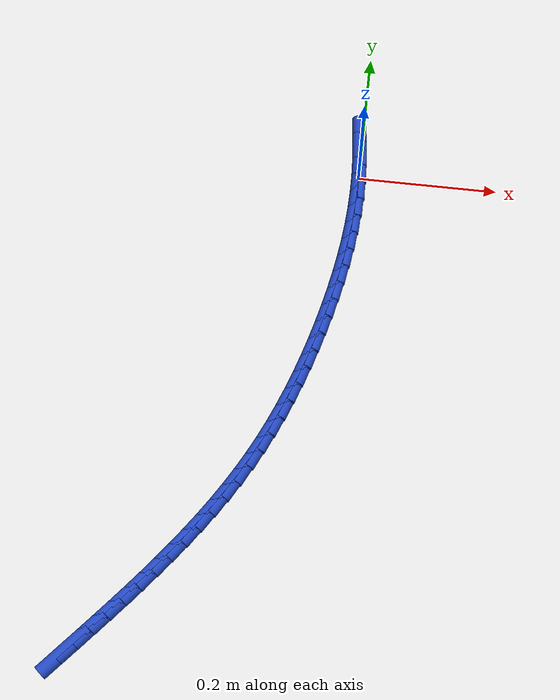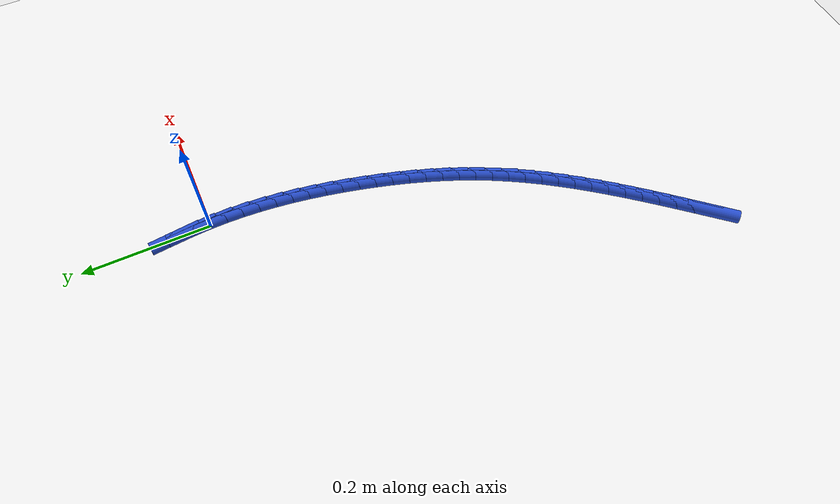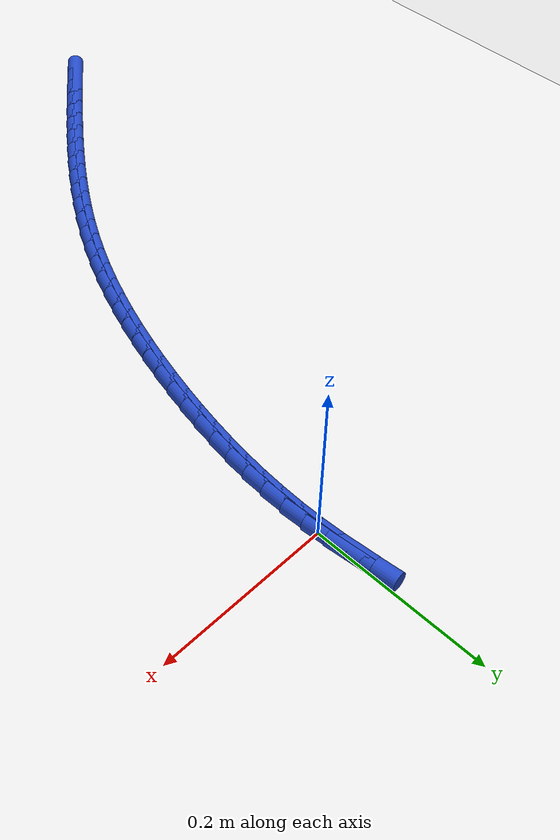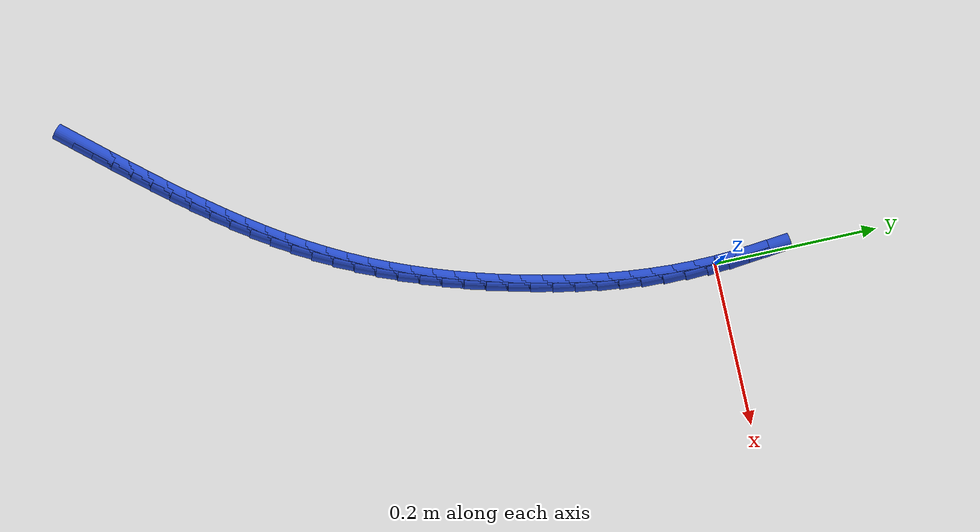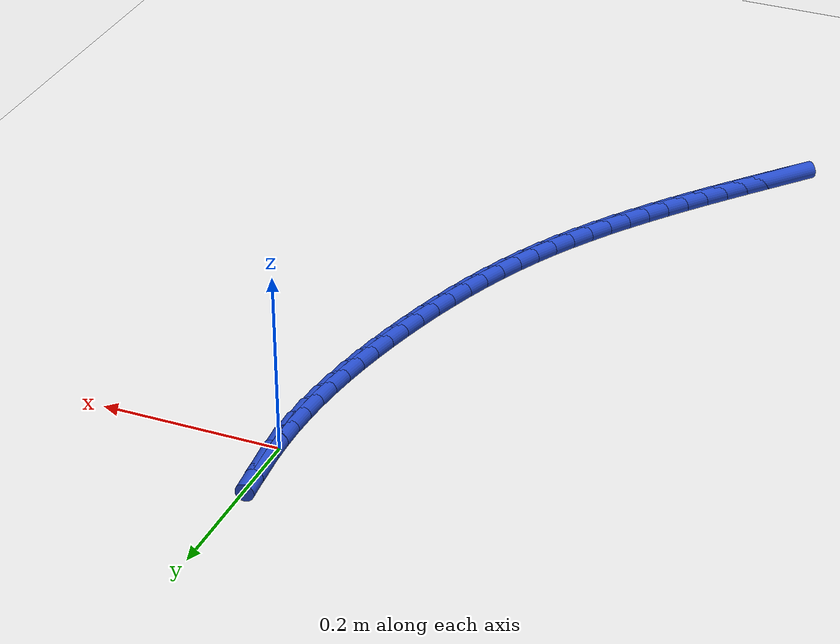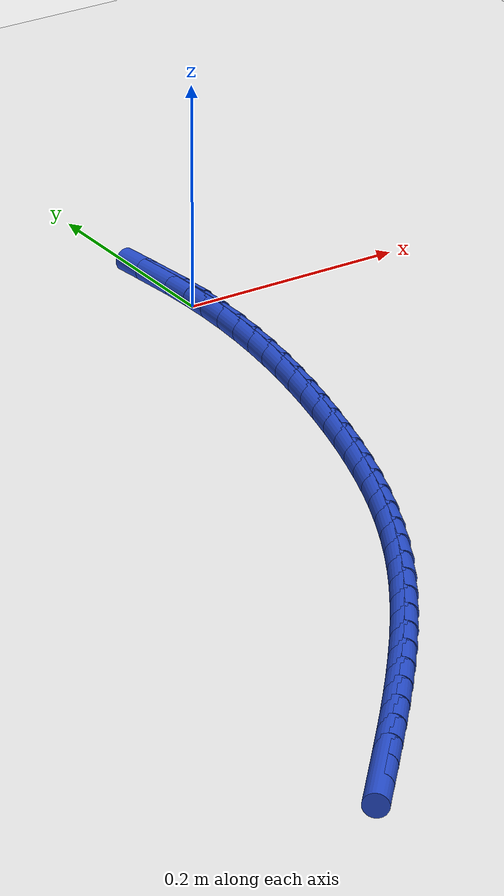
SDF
<sdf version="1.6">
 <world name="default">
  <model name="ground_plane">
   <static>1</static>
   <link name="link">
    <collision name="collision">
     <geometry><plane><normal>0 0 1</normal><size>100 100</size></plane></geometry>
     <surface><friction><ode><mu>100</mu><mu2>50</mu2></ode></friction></surface>
    </collision>
    <visual name="visual">
     <cast_shadows>0</cast_shadows>
     <geometry><plane><normal>0 0 1</normal><size>100 100</size></plane></geometry>
     <material>
      <script><uri>file://media/materials/scripts/gazebo.material</uri><name>Gazebo/WhiteGlow</name></script>
     </material>
    </visual>
   </link>
  </model>
  <model name="line">
   <link name="link_0">
    <pose>6.071532165918825e-18 -4.85722573273506e-17 0.01 0 1.57 -1.5202687227389018</pose>
    <collision name="collision">
     <geometry><cylinder><radius>0.01</radius><length>0.08</length></cylinder></geometry>
    </collision>
    <visual name="visual">
     <material>
      <script><name>Gazebo/Blue</name><uri>file://media/materials/scripts/gazebo.material</uri></script>
     </material>
     <geometry><cylinder><radius>0.01</radius><length>0.08</length></cylinder></geometry>
    </visual>
   </link>
   <link name="link_1">
    <pose>-0.0013621839984114712 0.026936257720885662 0.01 0 1.57 -1.4878777876628857</pose>
    <collision name="collision">
     <geometry><cylinder><radius>0.01</radius><length>0.08</length></cylinder></geometry>
    </collision>
    <visual name="visual">
     <material>
      <script><name>Gazebo/Blue</name><uri>file://media/materials/scripts/gazebo.material</uri></script>
     </material>
     <geometry><cylinder><radius>0.01</radius><length>0.08</length></cylinder></geometry>
    </visual>
   </link>
   <link name="link_2">
    <pose>-0.003603920495850203 0.05390967632911264 0.01 0 1.57 -1.4630148190310512</pose>
    <collision name="collision">
     <geometry><cylinder><radius>0.01</radius><length>0.08</length></cylinder></geometry>
    </collision>
    <visual name="visual">
     <material>
      <script><name>Gazebo/Blue</name><uri>file://media/materials/scripts/gazebo.material</uri></script>
     </material>
     <geometry><cylinder><radius>0.01</radius><length>0.08</length></cylinder></geometry>
    </visual>
   </link>
   <link name="link_250">
    <pose>-0.3042498673191543 -0.7167535047872194 0.01 0 1.57 0.860402977944339</pose>
    <collision name="collision">
     <geometry><cylinder><radius>0.01</radius><length>0.08</length></cylinder></geometry>
    </collision>
    <visual name="visual">
     <material>
      <script><name>Gazebo/Blue</name><uri>file://media/materials/scripts/gazebo.material</uri></script>
     </material>
     <geometry><cylinder><radius>0.01</radius><length>0.08</length></cylinder></geometry>
    </visual>
   </link>
   <link name="link_251">
    <pose>-0.286663952870351 -0.6963098268053097 0.01 0 1.57 0.8642690791997342</pose>
    <collision name="collision">
     <geometry><cylinder><radius>0.01</radius><length>0.08</length></cylinder></geometry>
    </collision>
    <visual name="visual">
     <material>
      <script><name>Gazebo/Blue</name><uri>file://media/materials/scripts/gazebo.material</uri></script>
     </material>
     <geometry><cylinder><radius>0.01</radius><length>0.08</length></cylinder></geometry>
    </visual>
   </link>
   <link name="link_252">
    <pose>-0.2691932083793415 -0.6758404933450893 0.01 0 1.57 0.8707164874178396</pose>
    <collision name="collision">
     <geometry><cylinder><radius>0.01</radius><length>0.08</length></cylinder></geometry>
    </collision>
    <visual name="visual">
     <material>
      <script><name>Gazebo/Blue</name><uri>file://media/materials/scripts/gazebo.material</uri></script>
     </material>
     <geometry><cylinder><radius>0.01</radius><length>0.08</length></cylinder></geometry>
    </visual>
   </link>
   <link name="link_253">
    <pose>-0.25189526057041733 -0.655306973498366 0.01 0 1.57 0.8797683877367338</pose>
    <collision name="collision">
     <geometry><cylinder><radius>0.01</radius><length>0.08</length></cylinder></geometry>
    </collision>
    <visual name="visual">
     <material>
      <script><name>Gazebo/Blue</name><uri>file://media/materials/scripts/gazebo.material</uri></script>
     </material>
     <geometry><cylinder><radius>0.01</radius><length>0.08</length></cylinder></geometry>
    </visual>
   </link>
   <link name="link_254">
    <pose>-0.23482773616786845 -0.634670736356946 0.01 0 1.57 0.8914507067793375</pose>
    <collision name="collision">
     <geometry><cylinder><radius>0.01</radius><length>0.08</length></cylinder></geometry>
    </collision>
    <visual name="visual">
     <material>
      <script><name>Gazebo/Blue</name><uri>file://media/materials/scripts/gazebo.material</uri></script>
     </material>
     <geometry><cylinder><radius>0.01</radius><length>0.08</length></cylinder></geometry>
    </visual>
   </link>
   <link name="link_255">
    <pose>-0.21804826189598525 -0.6138932510126356 0.01 0 1.57 0.9057903340006848</pose>
    <collision name="collision">
     <geometry><cylinder><radius>0.01</radius><length>0.08</length></cylinder></geometry>
    </collision>
    <visual name="visual">
     <material>
      <script><name>Gazebo/Blue</name><uri>file://media/materials/scripts/gazebo.material</uri></script>
     </material>
     <geometry><cylinder><radius>0.01</radius><length>0.08</length></cylinder></geometry>
    </visual>
   </link>
   <link name="link_256">
    <pose>-0.2016144644790583 -0.5929359865572414 0.01 0 1.57 0.9228127193290111</pose>
    <collision name="collision">
     <geometry><cylinder><radius>0.01</radius><length>0.08</length></cylinder></geometry>
    </collision>
    <visual name="visual">
     <material>
      <script><name>Gazebo/Blue</name><uri>file://media/materials/scripts/gazebo.material</uri></script>
     </material>
     <geometry><cylinder><radius>0.01</radius><length>0.08</length></cylinder></geometry>
    </visual>
   </link>
   <link name="link_257">
    <pose>-0.18558397064137788 -0.5717604120825697 0.01 0 1.57 0.9425388060662959</pose>
    <collision name="collision">
     <geometry><cylinder><radius>0.01</radius><length>0.08</length></cylinder></geometry>
    </collision>
    <visual name="visual">
     <material>
      <script><name>Gazebo/Blue</name><uri>file://media/materials/scripts/gazebo.material</uri></script>
     </material>
     <geometry><cylinder><radius>0.01</radius><length>0.08</length></cylinder></geometry>
    </visual>
   </link>
   <link name="link_258">
    <pose>-0.1700144071072346 -0.5503279966804273 0.01 0 1.57 0.9649812780445338</pose>
    <collision name="collision">
     <geometry><cylinder><radius>0.01</radius><length>0.08</length></cylinder></geometry>
    </collision>
    <visual name="visual">
     <material>
      <script><name>Gazebo/Blue</name><uri>file://media/materials/scripts/gazebo.material</uri></script>
     </material>
     <geometry><cylinder><radius>0.01</radius><length>0.08</length></cylinder></geometry>
    </visual>
   </link>
   <link name="link_259">
    <pose>-0.1549634006009189 -0.5286002094426206 0.01 0 1.57 0.9901401385278152</pose>
    <collision name="collision">
     <geometry><cylinder><radius>0.01</radius><length>0.08</length></cylinder></geometry>
    </collision>
    <visual name="visual">
     <material>
      <script><name>Gazebo/Blue</name><uri>file://media/materials/scripts/gazebo.material</uri></script>
     </material>
     <geometry><cylinder><radius>0.01</radius><length>0.08</length></cylinder></geometry>
    </visual>
   </link>
   <link name="link_260">
    <pose>-0.14048857784672122 -0.5065385194609563 0.01 0 1.57 1.0179976993860875</pose>
    <collision name="collision">
     <geometry><cylinder><radius>0.01</radius><length>0.08</length></cylinder></geometry>
    </collision>
    <visual name="visual">
     <material>
      <script><name>Gazebo/Blue</name><uri>file://media/materials/scripts/gazebo.material</uri></script>
     </material>
     <geometry><cylinder><radius>0.01</radius><length>0.08</length></cylinder></geometry>
    </visual>
   </link>
   <link name="link_261">
    <pose>-0.12664756556893159 -0.48410439582724 0.01 0 1.57 1.048513144707552</pose>
    <collision name="collision">
     <geometry><cylinder><radius>0.01</radius><length>0.08</length></cylinder></geometry>
    </collision>
    <visual name="visual">
     <material>
      <script><name>Gazebo/Blue</name><uri>file://media/materials/scripts/gazebo.material</uri></script>
     </material>
     <geometry><cylinder><radius>0.01</radius><length>0.08</length></cylinder></geometry>
    </visual>
   </link>
   <link name="link_262">
    <pose>-0.11349799049184135 -0.4612593076332798 0.01 0 1.57 1.0816169411918035</pose>
    <collision name="collision">
     <geometry><cylinder><radius>0.01</radius><length>0.08</length></cylinder></geometry>
    </collision>
    <visual name="visual">
     <material>
      <script><name>Gazebo/Blue</name><uri>file://media/materials/scripts/gazebo.material</uri></script>
     </material>
     <geometry><cylinder><radius>0.01</radius><length>0.08</length></cylinder></geometry>
    </visual>
   </link>
   <link name="link_263">
    <pose>-0.10109747933974053 -0.4379647239708815 0.01 0 1.57 1.1167869474997605</pose>
    <collision name="collision">
     <geometry><cylinder><radius>0.01</radius><length>0.08</length></cylinder></geometry>
    </collision>
    <visual name="visual">
     <material>
      <script><name>Gazebo/Blue</name><uri>file://media/materials/scripts/gazebo.material</uri></script>
     </material>
     <geometry><cylinder><radius>0.01</radius><length>0.08</length></cylinder></geometry>
    </visual>
   </link>
   <link name="link_264">
    <pose>-0.08949535477218713 -0.41419034743561284 0.01 0 1.57 1.151108762702698</pose>
    <collision name="collision">
     <geometry><cylinder><radius>0.01</radius><length>0.08</length></cylinder></geometry>
    </collision>
    <visual name="visual">
     <material>
      <script><name>Gazebo/Blue</name><uri>file://media/materials/scripts/gazebo.material</uri></script>
     </material>
     <geometry><cylinder><radius>0.01</radius><length>0.08</length></cylinder></geometry>
    </visual>
   </link>
   <link name="link_265">
    <pose>-0.07868460188453427 -0.3899617394779197 0.01 0 1.57 1.1834437143219874</pose>
    <collision name="collision">
     <geometry><cylinder><radius>0.01</radius><length>0.08</length></cylinder></geometry>
    </collision>
    <visual name="visual">
     <material>
      <script><name>Gazebo/Blue</name><uri>file://media/materials/scripts/gazebo.material</uri></script>
     </material>
     <geometry><cylinder><radius>0.01</radius><length>0.08</length></cylinder></geometry>
    </visual>
   </link>
   <link name="link_266">
    <pose>-0.06863479888027663 -0.36532766954798807 0.01 0 1.57 1.2138566416318772</pose>
    <collision name="collision">
     <geometry><cylinder><radius>0.01</radius><length>0.08</length></cylinder></geometry>
    </collision>
    <visual name="visual">
     <material>
      <script><name>Gazebo/Blue</name><uri>file://media/materials/scripts/gazebo.material</uri></script>
     </material>
     <geometry><cylinder><radius>0.01</radius><length>0.08</length></cylinder></geometry>
    </visual>
   </link>
   <link name="link_267">
    <pose>-0.05931544777115911 -0.34033698264034073 0.01 0 1.57 1.242422971358859</pose>
    <collision name="collision">
     <geometry><cylinder><radius>0.01</radius><length>0.08</length></cylinder></geometry>
    </collision>
    <visual name="visual">
     <material>
      <script><name>Gazebo/Blue</name><uri>file://media/materials/scripts/gazebo.material</uri></script>
     </material>
     <geometry><cylinder><radius>0.01</radius><length>0.08</length></cylinder></geometry>
    </visual>
   </link>
   <link name="link_268">
    <pose>-0.05069605056892665 -0.31503852374950025 0.01 0 1.57 1.2692217116140294</pose>
    <collision name="collision">
     <geometry><cylinder><radius>0.01</radius><length>0.08</length></cylinder></geometry>
    </collision>
    <visual name="visual">
     <material>
      <script><name>Gazebo/Blue</name><uri>file://media/materials/scripts/gazebo.material</uri></script>
     </material>
     <geometry><cylinder><radius>0.01</radius><length>0.08</length></cylinder></geometry>
    </visual>
   </link>
   <link name="link_269">
    <pose>-0.04274610928532414 -0.28948113786998925 0.01 0 1.57 1.294332885459416</pose>
    <collision name="collision">
     <geometry><cylinder><radius>0.01</radius><length>0.08</length></cylinder></geometry>
    </collision>
    <visual name="visual">
     <material>
      <script><name>Gazebo/Blue</name><uri>file://media/materials/scripts/gazebo.material</uri></script>
     </material>
     <geometry><cylinder><radius>0.01</radius><length>0.08</length></cylinder></geometry>
    </visual>
   </link>
   <link name="link_270">
    <pose>-0.03543512593209627 -0.2637136699963295 0.01 0 1.57 1.3178354932168712</pose>
    <collision name="collision">
     <geometry><cylinder><radius>0.01</radius><length>0.08</length></cylinder></geometry>
    </collision>
    <visual name="visual">
     <material>
      <script><name>Gazebo/Blue</name><uri>file://media/materials/scripts/gazebo.material</uri></script>
     </material>
     <geometry><cylinder><radius>0.01</radius><length>0.08</length></cylinder></geometry>
    </visual>
   </link>
   <link name="link_271">
    <pose>-0.02873260252098841 -0.23778496512304534 0.01 0 1.57 1.339851140158023</pose>
    <collision name="collision">
     <geometry><cylinder><radius>0.01</radius><length>0.08</length></cylinder></geometry>
    </collision>
    <visual name="visual">
     <material>
      <script><name>Gazebo/Blue</name><uri>file://media/materials/scripts/gazebo.material</uri></script>
     </material>
     <geometry><cylinder><radius>0.01</radius><length>0.08</length></cylinder></geometry>
    </visual>
   </link>
   <link name="link_272">
    <pose>-0.02260913774095325 -0.2117432475672779 0.01 0 1.57 1.3620701434050388</pose>
    <collision name="collision">
     <geometry><cylinder><radius>0.01</radius><length>0.08</length></cylinder></geometry>
    </collision>
    <visual name="visual">
     <material>
      <script><name>Gazebo/Blue</name><uri>file://media/materials/scripts/gazebo.material</uri></script>
     </material>
     <geometry><cylinder><radius>0.01</radius><length>0.08</length></cylinder></geometry>
    </visual>
   </link>
   <link name="link_273">
    <pose>-0.017074762483966843 -0.18561442452651492 0.01 0 1.57 1.3865564440049216</pose>
    <collision name="collision">
     <geometry><cylinder><radius>0.01</radius><length>0.08</length></cylinder></geometry>
    </collision>
    <visual name="visual">
     <material>
      <script><name>Gazebo/Blue</name><uri>file://media/materials/scripts/gazebo.material</uri></script>
     </material>
     <geometry><cylinder><radius>0.01</radius><length>0.08</length></cylinder></geometry>
    </visual>
   </link>
   <link name="link_274">
    <pose>-0.012188952876613514 -0.15939641908545019 0.01 0 1.57 1.413443173223101</pose>
    <collision name="collision">
     <geometry><cylinder><radius>0.01</radius><length>0.08</length></cylinder></geometry>
    </collision>
    <visual name="visual">
     <material>
      <script><name>Gazebo/Blue</name><uri>file://media/materials/scripts/gazebo.material</uri></script>
     </material>
     <geometry><cylinder><radius>0.01</radius><length>0.08</length></cylinder></geometry>
    </visual>
   </link>
   <link name="link_275">
    <pose>-0.008014316528272045 -0.13308538202921366 0.01 0 1.57 1.4427196018900625</pose>
    <collision name="collision">
     <geometry><cylinder><radius>0.01</radius><length>0.08</length></cylinder></geometry>
    </collision>
    <visual name="visual">
     <material>
      <script><name>Gazebo/Blue</name><uri>file://media/materials/scripts/gazebo.material</uri></script>
     </material>
     <geometry><cylinder><radius>0.01</radius><length>0.08</length></cylinder></geometry>
    </visual>
   </link>
   <link name="link_276">
    <pose>-0.004613461048321215 -0.10667746414293523 0.01 0 1.57 1.4743556655378776</pose>
    <collision name="collision">
     <geometry><cylinder><radius>0.01</radius><length>0.08</length></cylinder></geometry>
    </collision>
    <visual name="visual">
     <material>
      <script><name>Gazebo/Blue</name><uri>file://media/materials/scripts/gazebo.material</uri></script>
     </material>
     <geometry><cylinder><radius>0.01</radius><length>0.08</length></cylinder></geometry>
    </visual>
   </link>
   <link name="link_277">
    <pose>-0.0020489940461398096 -0.0801688162117448 0.01 0 1.57 1.5082972611571615</pose>
    <collision name="collision">
     <geometry><cylinder><radius>0.01</radius><length>0.08</length></cylinder></geometry>
    </collision>
    <visual name="visual">
     <material>
      <script><name>Gazebo/Blue</name><uri>file://media/materials/scripts/gazebo.material</uri></script>
     </material>
     <geometry><cylinder><radius>0.01</radius><length>0.08</length></cylinder></geometry>
    </visual>
   </link>
   <link name="link_278">
    <pose>-0.0003835231311066106 -0.05355558902077232 0.01 0 1.57 1.544461712414922</pose>
    <collision name="collision">
     <geometry><cylinder><radius>0.01</radius><length>0.08</length></cylinder></geometry>
    </collision>
    <visual name="visual">
     <material>
      <script><name>Gazebo/Blue</name><uri>file://media/materials/scripts/gazebo.material</uri></script>
     </material>
     <geometry><cylinder><radius>0.01</radius><length>0.08</length></cylinder></geometry>
    </visual>
   </link>
   <link name="link_279">
    <pose>0.00032034408739960423 -0.026833933355146868 0.01 0 1.57 -1.558858871843024</pose>
    <collision name="collision">
     <geometry><cylinder><radius>0.01</radius><length>0.08</length></cylinder></geometry>
    </collision>
    <visual name="visual">
     <material>
      <script><name>Gazebo/Blue</name><uri>file://media/materials/scripts/gazebo.material</uri></script>
     </material>
     <geometry><cylinder><radius>0.01</radius><length>0.08</length></cylinder></geometry>
    </visual>
   </link>
   <link name="link_280">
    <pose>7.806255641895632e-18 -4.163336342344337e-17 0.01 0 1.57 -1.518629975154072</pose>
    <collision name="collision">
     <geometry><cylinder><radius>0.01</radius><length>0.08</length></cylinder></geometry>
    </collision>
    <visual name="visual">
     <material>
      <script><name>Gazebo/Blue</name><uri>file://media/materials/scripts/gazebo.material</uri></script>
     </material>
     <geometry><cylinder><radius>0.01</radius><length>0.08</length></cylinder></geometry>
    </visual>
   </link>
   <link name="link_281">
    <pose>-0.0014071630026841458 0.026950060259539093 0.01 0 1.57 -1.4766321121444013</pose>
    <collision name="collision">
     <geometry><cylinder><radius>0.01</radius><length>0.08</length></cylinder></geometry>
    </collision>
    <visual name="visual">
     <material>
      <script><name>Gazebo/Blue</name><uri>file://media/materials/scripts/gazebo.material</uri></script>
     </material>
     <geometry><cylinder><radius>0.01</radius><length>0.08</length></cylinder></geometry>
    </visual>
   </link>
  </model>
 </world>
</sdf>
